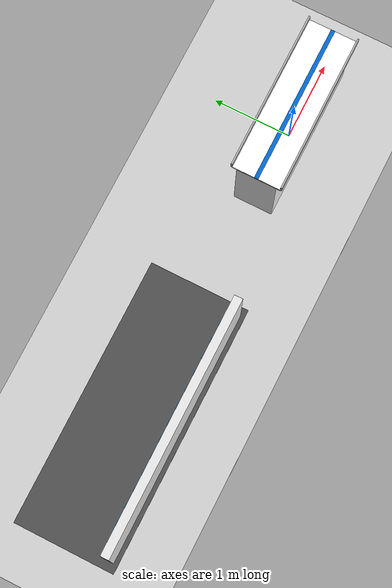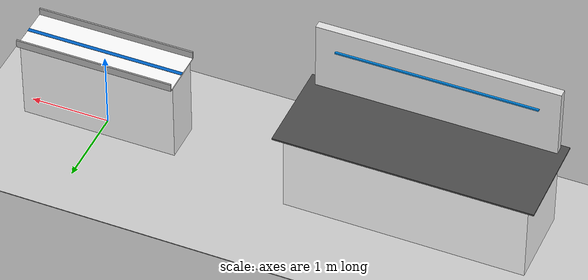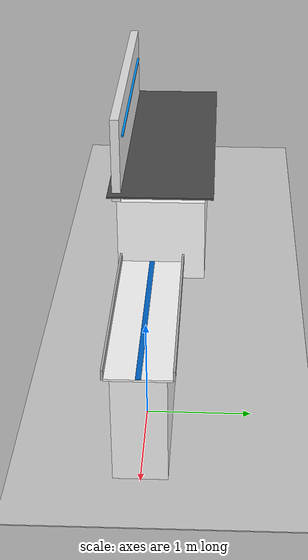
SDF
<sdf version="1.8">
 <world name="restaurant_v3_clean">
  <physics name="1ms" type="ignored">
   <max_step_size>0.001</max_step_size>
   <real_time_factor>1.0</real_time_factor>
  </physics>
  <plugin filename="ignition-gazebo-physics-system" name="ignition::gazebo::systems::Physics"/>
  <plugin filename="ignition-gazebo-scene-broadcaster-system" name="ignition::gazebo::systems::SceneBroadcaster"/>
  <plugin filename="ignition-gazebo-user-commands-system" name="ignition::gazebo::systems::UserCommands"/>
  <plugin filename="ignition-gazebo-sensors-system" name="ignition::gazebo::systems::Sensors">
   <render_engine>ogre2</render_engine>
  </plugin>
  <light type="directional" name="main_sun">
   <pose>0 0 10 0 0 0</pose>
   <diffuse>1.0 1.0 1.0 1</diffuse>
   <specular>0.5 0.5 0.5 1</specular>
   <direction>-0.5 0.1 -0.9</direction>
  </light>
  <model name="floor_tile">
   <static>true</static>
   <pose>0 0 0.01 0 0 0</pose>
   <link name="l">
    <visual name="v">
     <geometry><box><size>20 20 0.01</size></box></geometry>
     <material><ambient>0.8 0.8 0.8 1</ambient><diffuse>0.8 0.8 0.8 1</diffuse></material>
    </visual>
   </link>
  </model>
  <include>
   <static>true</static>
   <uri>model://kitchen_hub</uri>
   <name>k_base</name>
   <pose>-4 0 0 0 0 0</pose>
  </include>
  <include>
   <static>true</static>
   <uri>model://delivery_track</uri>
   <name>t_sample</name>
   <pose>0 0 1.1 0 0 0</pose>
  </include>
 </world>
</sdf>

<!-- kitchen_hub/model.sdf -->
<sdf version="1.8">
  <model name="kitchen_hub">
    <static>true</static>
    <link name="link">
      <!-- Main Base (Pure White) -->
      <visual name="base_visual">
        <pose>0 0 0.5 0 0 0</pose>
        <geometry>
          <box><size>3.0 1.0 1.0</size></box>
        </geometry>
        <material>
          <ambient>1 1 1 1</ambient>
          <diffuse>1 1 1 1</diffuse>
          <specular>0.5 0.5 0.5 1</specular>
        </material>
      </visual>
      <collision name="base_collision">
        <pose>0 0 0.5 0 0 0</pose>
        <geometry>
          <box><size>3.0 1.0 1.0</size></box>
        </geometry>
      </collision>

      <!-- Top Counter (Brushed Silver/Dark Gray) -->
      <visual name="top_counter">
        <pose>0 0 1.1 0 0 0</pose>
        <geometry>
          <box><size>3.2 1.2 0.02</size></box>
        </geometry>
        <material>
          <ambient>0.3 0.3 0.3 1</ambient>
          <diffuse>0.3 0.3 0.3 1</diffuse>
          <specular>1 1 1 1</specular>
        </material>
      </visual>

      <!-- Back Wall (White) -->
      <visual name="back_wall">
        <pose>0 -0.5 1.5 0 0 0</pose>
        <geometry>
          <box><size>3.0 0.1 1.0</size></box>
        </geometry>
        <material>
          <ambient>0.9 0.9 0.9 1</ambient>
          <diffuse>0.9 0.9 0.9 1</diffuse>
        </material>
      </visual>

      <!-- Tech Accent (Blue Neon) -->
      <visual name="tech_accent">
        <pose>0 -0.45 1.7 0 0 0</pose>
        <geometry>
          <box><size>2.5 0.05 0.02</size></box>
        </geometry>
        <material>
          <ambient>0 0.6 1 1</ambient>
          <diffuse>0 0.6 1 1</diffuse>
          <emissive>0 0.3 0.5 1</emissive>
        </material>
      </visual>
    </link>
  </model>
</sdf>

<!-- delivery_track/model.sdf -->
<sdf version="1.8">
  <model name="delivery_track">
    <static>true</static>
    <link name="link">
      <!-- Main Track Countertop (Pure White) -->
      <visual name="floor">
        <geometry><box><size>2.0 0.6 0.02</size></box></geometry>
        <material>
          <ambient>1 1 1 1</ambient>
          <diffuse>1 1 1 1</diffuse>
          <specular>0.8 0.8 0.8 1</specular>
        </material>
      </visual>
      <collision name="floor_c">
        <geometry><box><size>2.0 0.6 0.02</size></box></geometry>
      </collision>

      <!-- SOLID WHITE PEDESTAL (To ground) - Visual only to avoid ODE crashes -->
      <visual name="pedestal">
        <pose>0 0 -0.55 0 0 0</pose>
        <geometry><box><size>1.98 0.5 1.1</size></box></geometry>
        <material>
          <ambient>0.95 0.95 0.95 1</ambient>
          <diffuse>0.95 0.95 0.95 1</diffuse>
        </material>
      </visual>

      <!-- Right Silver Rail (Low Height) -->
      <visual name="rail_right">
        <pose>0 -0.31 0.05 0 0 0</pose>
        <geometry><box><size>2.0 0.02 0.1</size></box></geometry>
        <material>
          <ambient>0.7 0.7 0.7 1</ambient>
          <diffuse>0.7 0.7 0.7 1</diffuse>
          <specular>1 1 1 1</specular>
        </material>
      </visual>

      <!-- Left Silver Rail (Low Height) -->
      <visual name="rail_left">
        <pose>0 0.31 0.05 0 0 0</pose>
        <geometry><box><size>2.0 0.02 0.1</size></box></geometry>
        <material>
          <ambient>0.7 0.7 0.7 1</ambient>
          <diffuse>0.7 0.7 0.7 1</diffuse>
          <specular>1 1 1 1</specular>
        </material>
      </visual>

      <!-- Blue Tech Accent Strip -->
      <visual name="accent">
        <pose>0 0 0.011 0 0 0</pose>
        <geometry><box><size>2.0 0.05 0.005</size></box></geometry>
        <material>
          <ambient>0 0.4 0.8 1</ambient>
          <diffuse>0 0.4 0.8 1</diffuse>
          <emissive>0 0.2 0.4 1</emissive>
        </material>
      </visual>
    </link>
  </model>
</sdf>
